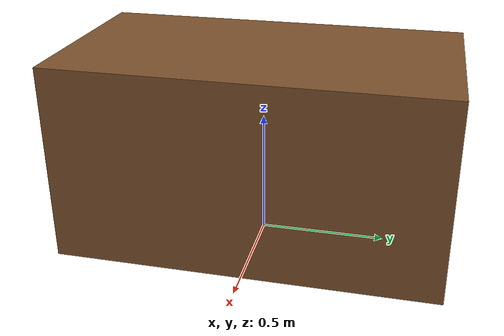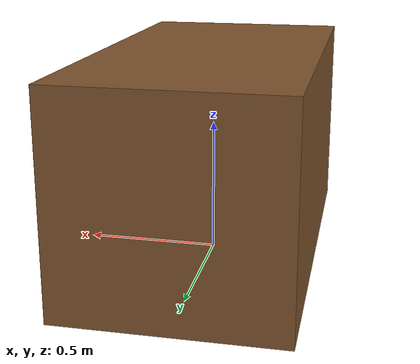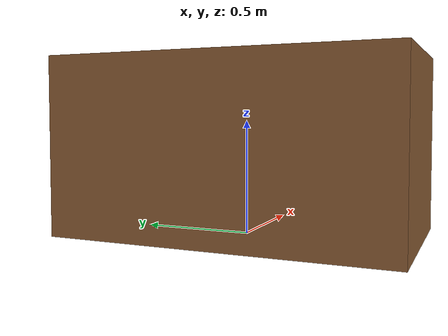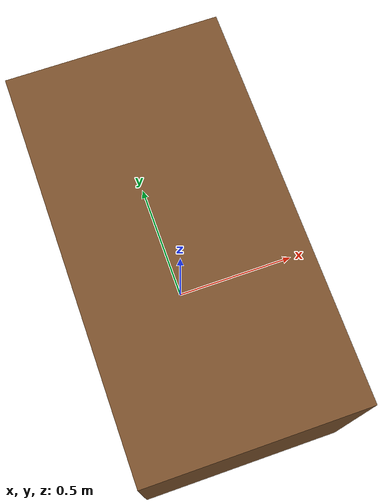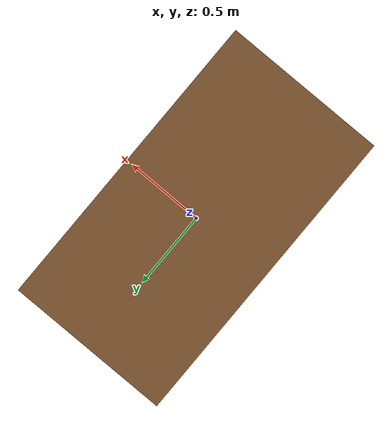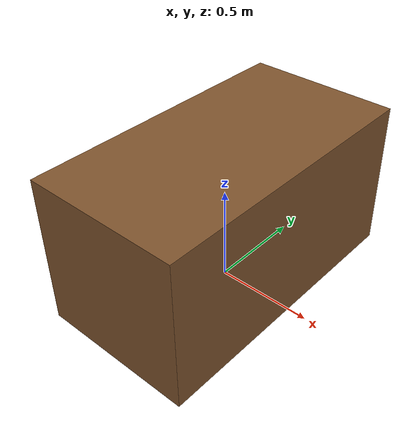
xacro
<?xml version="1.0"?>
<robot xmlns:xacro="http://www.ros.org/wiki/xacro"
       name="tams_ur5_table" >
  <xacro:property name="tableheight" value="0.78" />
  <xacro:property name="tablewidth" value="1.50" />
  <xacro:property name="tabledepth" value="0.80" />

  <xacro:property name="tabletag_size" value="0.20" />

  <link name="table">
    <inertial>
      <origin xyz="0 0 ${tableheight/2}" />
      <mass value="10" />
      <inertia  ixx="1" ixy="0" ixz="0" iyy="1" iyz="0" izz="1" />
    </inertial>
    <visual>
      <material name="brown" />
      <origin xyz="0 0 ${tableheight/2}" />
      <geometry>
        <box size="${tabledepth} ${tablewidth} ${tableheight}" />
      </geometry>
    </visual>
    <collision>
      <origin xyz="0 0 ${tableheight/2}" />
      <geometry>
        <box size="${tabledepth} ${tablewidth} ${tableheight}" />
      </geometry>
    </collision>
  </link>
  <gazebo reference="table">
    <material>Gazebo/Blue</material>
    <turnGravityOff>false</turnGravityOff>
    <selfCollide>true</selfCollide>
    <!-- kp: stiffness kd: damping mu1, mu2: friction -->
    <mu1>100.0</mu1>
    <mu2>100.0</mu2>
    <kp>1000000.0</kp>
    <kd>1.0</kd>
  </gazebo>

  <link name="table_top"/>

  <joint name="table_top_joint" type="fixed">
    <parent link="table"/>
    <child link="table_top"/>
    <origin xyz="0 0 ${tableheight}" rpy="0 0 0"/>
  </joint>

  <link name="table_tag"/>

  <joint name="table_tag_joint" type="fixed">
    <parent link="table_top"/>
    <child link="table_tag"/>
    <origin xyz="${tabledepth/2-tabletag_size/2} ${tablewidth/2-tabletag_size/2} 0" rpy="0 0 ${pi}"/>
  </joint>

</robot>
